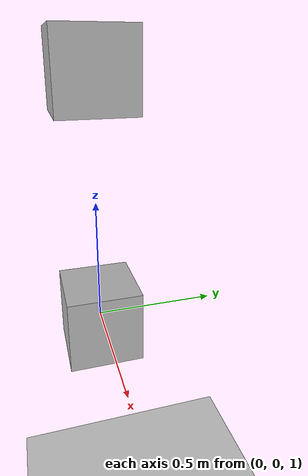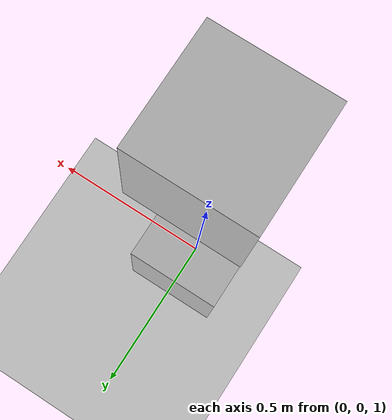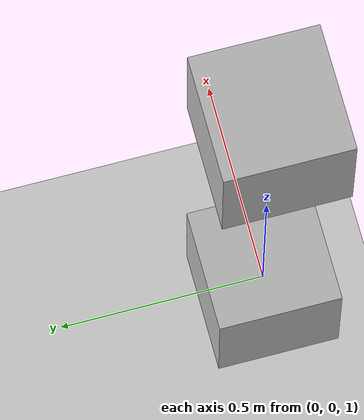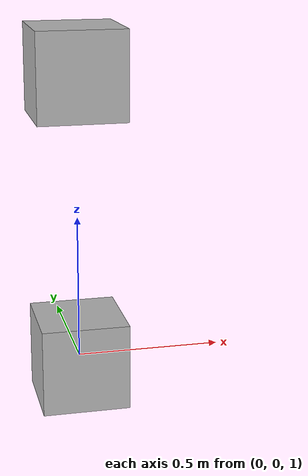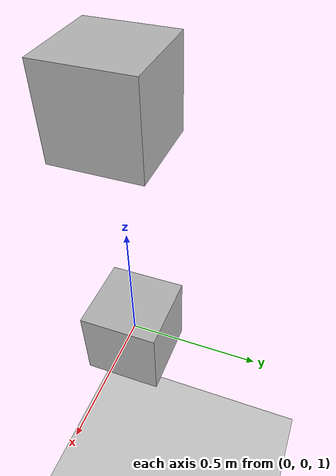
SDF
<sdf version='1.9'>
  <world name='default'>
    <physics type="ode">
      <max_step_size>0.004</max_step_size>
      <real_time_factor>1.0</real_time_factor>
      <real_time_update_rate>250</real_time_update_rate>
    </physics>
    <plugin name='gz::sim::systems::Physics' filename='gz-sim-physics-system'/>
    <plugin name='gz::sim::systems::UserCommands' filename='gz-sim-user-commands-system'/>
    <plugin name='gz::sim::systems::SceneBroadcaster' filename='gz-sim-scene-broadcaster-system'/>
    <plugin name='gz::sim::systems::Contact' filename='gz-sim-contact-system'/>
    <plugin name='gz::sim::systems::Imu' filename='gz-sim-imu-system'/>
    <plugin name='gz::sim::systems::AirPressure' filename='gz-sim-air-pressure-system'/>
    <plugin name='gz::sim::systems::ForceTorque' filename='gz-sim-forcetorque-system'/>
    <plugin name='gz::sim::systems::Sensors' filename='gz-sim-sensors-system'>
      <render_engine>ogre2</render_engine>
    </plugin>

    <plugin
      filename="gz-sim-apply-link-wrench-system"
      name="gz::sim::systems::ApplyLinkWrench">
    </plugin>

    <!-- gz topic -t "/world/default/wrench/persistent" -m gz.msgs.EntityWrench  -p "entity: {name: 'link_1', type: LINK}, wrench: {force: {x: -20}}" -->
    <!-- gz topic -t "/world/default/wrench/clear" -m gz.msgs.Entity  -p "name: 'link_1', type: LINK" -->

    <!-- gz topic -t "/world/multi_drone_slung_load/wrench" -m gz.msgs.EntityWrench  -p "entity: {name: 'faux_box::base_link', type: LINK}, wrench: {force: {y: -1000}, torque: {x: 0}}" -->
    <!-- gz topic -t "/world/multi_drone_slung_load/wrench/clear" -m gz.msgs.Entity  -p "name: 'faux_box::base_link', type: LINK" -->

    <gui fullscreen='false'>
      <plugin name='3D View' filename='GzScene3D'>
        <gz-gui>
          <title>3D View</title>
          <property type='bool' key='showTitleBar'>0</property>
          <property type='string' key='state'>docked</property>
        </gz-gui>
        <engine>ogre2</engine>
        <scene>scene</scene>
        <ambient_light>0.5984631152222222 0.5984631152222222 0.5984631152222222</ambient_light>
        <background_color>0.8984631152222222 0.8984631152222222 0.8984631152222222</background_color>
        <camera_pose>-6 0 6 0 0.5 0</camera_pose>
      </plugin>
      <plugin name='World control' filename='WorldControl'>
        <gz-gui>
          <title>World control</title>
          <property type='bool' key='showTitleBar'>0</property>
          <property type='bool' key='resizable'>0</property>
          <property type='double' key='height'>72</property>
          <property type='double' key='width'>121</property>
          <property type='double' key='z'>1</property>
          <property type='string' key='state'>floating</property>
          <anchors target='3D View'>
            <line own='left' target='left'/>
            <line own='bottom' target='bottom'/>
          </anchors>
        </gz-gui>
        <play_pause>1</play_pause>
        <step>1</step>
        <start_paused>1</start_paused>
      </plugin>
      <plugin name='World stats' filename='WorldStats'>
        <gz-gui>
          <title>World stats</title>
          <property type='bool' key='showTitleBar'>0</property>
          <property type='bool' key='resizable'>0</property>
          <property type='double' key='height'>110</property>
          <property type='double' key='width'>290</property>
          <property type='double' key='z'>1</property>
          <property type='string' key='state'>floating</property>
          <anchors target='3D View'>
            <line own='right' target='right'/>
            <line own='bottom' target='bottom'/>
          </anchors>
        </gz-gui>
        <sim_time>1</sim_time>
        <real_time>1</real_time>
        <real_time_factor>1</real_time_factor>
        <iterations>1</iterations>
      </plugin>
      <plugin name='Entity tree' filename='EntityTree'/>
    </gui>
    <gravity>0 0 -9.8</gravity>
    <magnetic_field>6e-06 2.3e-05 -4.2e-05</magnetic_field>
    <atmosphere type='adiabatic'/>
    <scene>
      <grid>false</grid>
      <ambient>0.4 0.4 0.4 1</ambient>
      <background>0.7 0.7 0.7 1</background>
      <shadows>true</shadows>
    </scene>
    <model name='ground_plane'>
      <static>true</static>
      <link name='link'>
        <collision name='collision'>
          <geometry>
            <plane>
              <normal>0 0 1</normal>
              <size>1 1</size>
            </plane>
          </geometry>
          <surface>
            <friction>
              <ode/>
            </friction>
            <bounce/>
            <contact/>
          </surface>
        </collision>
        <visual name='visual'>
          <geometry>
            <plane>
              <normal>0 0 1</normal>
              <size>100 100</size>
            </plane>
          </geometry>
          <material>
            <ambient>0.8 0.8 0.8 1</ambient>
            <diffuse>0.8 0.8 0.8 1</diffuse>
            <specular>0.8 0.8 0.8 1</specular>
          </material>
        </visual>
        <pose>0 0 0 0 -0 0</pose>
        <inertial>
          <pose>0 0 0 0 -0 0</pose>
          <mass>1</mass>
          <inertia>
            <ixx>1</ixx>
            <ixy>0</ixy>
            <ixz>0</ixz>
            <iyy>1</iyy>
            <iyz>0</iyz>
            <izz>1</izz>
          </inertia>
        </inertial>
        <enable_wind>false</enable_wind>
      </link>
      <pose>0 0 0 0 -0 0</pose>
      <self_collide>false</self_collide>
    </model>
    <light name='sunUTC' type='directional'>
      <pose>0 0 500 0 -0 0</pose>
      <cast_shadows>true</cast_shadows>
      <intensity>1</intensity>
      <direction>0.001 0.625 -0.78</direction>
      <diffuse>0.904 0.904 0.904 1</diffuse>
      <specular>0.271 0.271 0.271 1</specular>
      <attenuation>
        <range>2000</range>
        <linear>0</linear>
        <constant>1</constant>
        <quadratic>0</quadratic>
      </attenuation>
      <spot>
        <inner_angle>0</inner_angle>
        <outer_angle>0</outer_angle>
        <falloff>0</falloff>
      </spot>
    </light>

    <!-- Simple model -->
    <model name="simple_model">
      <static>false</static>

      <!-- Parent link -->
      <link name="link_1">
        <pose>0 0 1 0 0 0</pose>
        <inertial>
          <mass>1.0</mass>
        </inertial>
        <visual name="vis_link_1">
          <geometry>
            <box>
              <size>0.3 0.3 0.3</size>
            </box>
          </geometry>
        </visual>
        <collision name="col_link_1">
          <geometry>
            <box>
              <size>0.3 0.3 0.3</size>
            </box>
          </geometry>
        </collision>
        <sensor name="imu_sensor" type="imu">
          <always_on>1</always_on>
          <update_rate>250</update_rate>
      </sensor>
      </link>

      <!-- Child link -->
      <link name="link_2">
        <pose>0 0 2 0 0 0</pose>
        <inertial>
          <mass>1.0</mass>
        </inertial>
        <visual name="vis_link_2">
          <geometry>
            <box>
              <size>0.3 0.3 0.3</size>
            </box>
          </geometry>
        </visual>
        <collision name="col_link_2">
          <geometry>
            <box>
              <size>0.3 0.3 0.3</size>
            </box>
          </geometry>
        </collision>
      </link>

      <!-- Joint with sensor -->
      <joint name="joint_1" type="fixed"> <!-- type="revolute"> -->
        <parent>link_1</parent>
        <child>link_2</child>
        <pose>0 0 1.5 0 0 0</pose>

        <sensor name="ft_sensor" type="force_torque">
          <always_on>true</always_on>
          <update_rate>50</update_rate>
          <force_torque>
            <frame>child</frame>
            <measure_direction>child_to_parent</measure_direction>
          </force_torque>
        </sensor>
      </joint>
    </model>

  </world>
</sdf>
